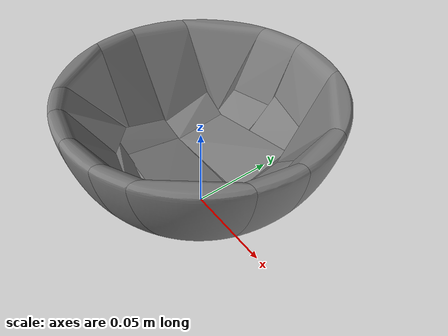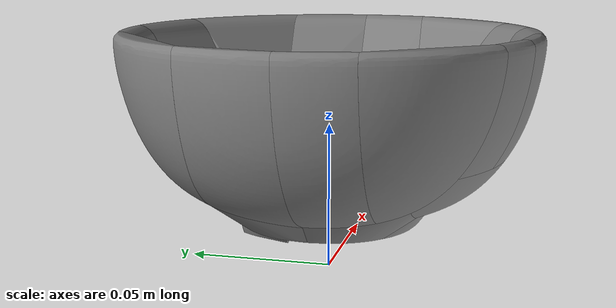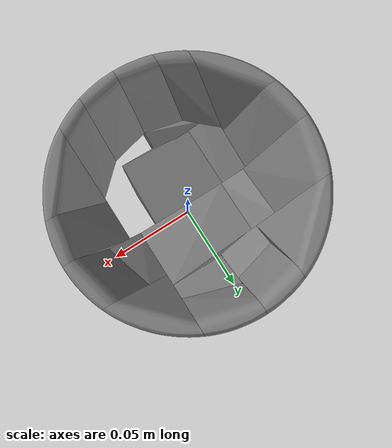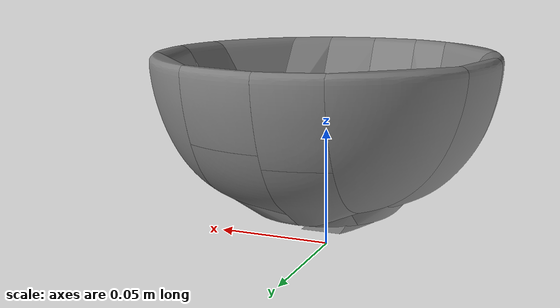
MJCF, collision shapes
<mujoco model="bowl_00">
  <asset>
    <mesh name="bowl00_visual_mesh" file="textured.obj" scale="0.07 0.07 0.07"/>
    <mesh name="bowl00_collision_mesh_0" file="collision_0.obj" scale="0.07 0.07 0.07"/>
    <mesh name="bowl00_collision_mesh_1" file="collision_1.obj" scale="0.07 0.07 0.07"/>
    <mesh name="bowl00_collision_mesh_2" file="collision_2.obj" scale="0.07 0.07 0.07"/>
    <mesh name="bowl00_collision_mesh_3" file="collision_3.obj" scale="0.07 0.07 0.07"/>
    <mesh name="bowl00_collision_mesh_4" file="collision_4.obj" scale="0.07 0.07 0.07"/>
    <mesh name="bowl00_collision_mesh_5" file="collision_5.obj" scale="0.07 0.07 0.07"/>
    <mesh name="bowl00_collision_mesh_6" file="collision_6.obj" scale="0.07 0.07 0.07"/>
    <mesh name="bowl00_collision_mesh_7" file="collision_7.obj" scale="0.07 0.07 0.07"/>
    <mesh name="bowl00_collision_mesh_8" file="collision_8.obj" scale="0.07 0.07 0.07"/>
    <mesh name="bowl00_collision_mesh_9" file="collision_9.obj" scale="0.07 0.07 0.07"/>
    <mesh name="bowl00_collision_mesh_10" file="collision_10.obj" scale="0.07 0.07 0.07"/>
    <mesh name="bowl00_collision_mesh_11" file="collision_11.obj" scale="0.07 0.07 0.07"/>
    <mesh name="bowl00_collision_mesh_12" file="collision_12.obj" scale="0.07 0.07 0.07"/>
    <mesh name="bowl00_collision_mesh_13" file="collision_13.obj" scale="0.07 0.07 0.07"/>
    <mesh name="bowl00_collision_mesh_14" file="collision_14.obj" scale="0.07 0.07 0.07"/>
    <mesh name="bowl00_collision_mesh_15" file="collision_15.obj" scale="0.07 0.07 0.07"/>
    <mesh name="bowl00_collision_mesh_16" file="collision_16.obj" scale="0.07 0.07 0.07"/>
    <mesh name="bowl00_collision_mesh_17" file="collision_17.obj" scale="0.07 0.07 0.07"/>
    <mesh name="bowl00_collision_mesh_18" file="collision_18.obj" scale="0.07 0.07 0.07"/>
    <mesh name="bowl00_collision_mesh_19" file="collision_19.obj" scale="0.07 0.07 0.07"/>
    <mesh name="bowl00_collision_mesh_20" file="collision_20.obj" scale="0.07 0.07 0.07"/>
    <mesh name="bowl00_collision_mesh_21" file="collision_21.obj" scale="0.07 0.07 0.07"/>
    <mesh name="bowl00_collision_mesh_22" file="collision_22.obj" scale="0.07 0.07 0.07"/>
    <mesh name="bowl00_collision_mesh_23" file="collision_23.obj" scale="0.07 0.07 0.07"/>
    <texture name="tex-bowl00" type="2d" file="texture_map.png"/>
    <material name="bowl00_material"
              texture="tex-bowl00"
              rgba="1 1 1 1"
              texrepeat="1 1"
              texuniform="false"
              reflectance="0.5"/>
  </asset>

  <worldbody>
    <body>
      <body name="object">
        <geom name="g0"
              type="mesh"
              pos="0 0 0.05"
              quat="0.707107 0.707107 0 0"
              mesh="bowl00_collision_mesh_0"
              density="300"
              friction="1 0.3 0.1"
              solimp="0.998 0.998 0.001"
              solref="0.001 1"
              contype="1"
              conaffinity="1"
              group="0"
              condim="4"/>
        <geom name="g1"
              type="mesh"
              pos="0 0 0.05"
              quat="0.707107 0.707107 0 0"
              mesh="bowl00_collision_mesh_1"
              density="300"
              friction="1 0.3 0.1"
              solimp="0.998 0.998 0.001"
              solref="0.001 1"
              contype="1"
              conaffinity="1"
              group="0"
              condim="4"/>
        <geom name="g2"
              type="mesh"
              pos="0 0 0.05"
              quat="0.707107 0.707107 0 0"
              mesh="bowl00_collision_mesh_2"
              density="300"
              friction="1 0.3 0.1"
              solimp="0.998 0.998 0.001"
              solref="0.001 1"
              contype="1"
              conaffinity="1"
              group="0"
              condim="4"/>
        <geom name="g3"
              type="mesh"
              pos="0 0 0.05"
              quat="0.707107 0.707107 0 0"
              mesh="bowl00_collision_mesh_3"
              density="300"
              friction="1 0.3 0.1"
              solimp="0.998 0.998 0.001"
              solref="0.001 1"
              contype="1"
              conaffinity="1"
              group="0"
              condim="4"/>
        <geom name="g4"
              type="mesh"
              pos="0 0 0.05"
              quat="0.707107 0.707107 0 0"
              mesh="bowl00_collision_mesh_4"
              density="300"
              friction="1 0.3 0.1"
              solimp="0.998 0.998 0.001"
              solref="0.001 1"
              contype="1"
              conaffinity="1"
              group="0"
              condim="4"/>
        <geom name="g5"
              type="mesh"
              pos="0 0 0.05"
              quat="0.707107 0.707107 0 0"
              mesh="bowl00_collision_mesh_5"
              density="300"
              friction="1 0.3 0.1"
              solimp="0.998 0.998 0.001"
              solref="0.001 1"
              contype="1"
              conaffinity="1"
              group="0"
              condim="4"/>
        <geom name="g6"
              type="mesh"
              pos="0 0 0.05"
              quat="0.707107 0.707107 0 0"
              mesh="bowl00_collision_mesh_6"
              density="300"
              friction="1 0.3 0.1"
              solimp="0.998 0.998 0.001"
              solref="0.001 1"
              contype="1"
              conaffinity="1"
              group="0"
              condim="4"/>
        <geom name="g7"
              type="mesh"
              pos="0 0 0.05"
              quat="0.707107 0.707107 0 0"
              mesh="bowl00_collision_mesh_7"
              density="300"
              friction="1 0.3 0.1"
              solimp="0.998 0.998 0.001"
              solref="0.001 1"
              contype="1"
              conaffinity="1"
              group="0"
              condim="4"/>
        <geom name="g8"
              type="mesh"
              pos="0 0 0.05"
              quat="0.707107 0.707107 0 0"
              mesh="bowl00_collision_mesh_8"
              density="300"
              friction="1 0.3 0.1"
              solimp="0.998 0.998 0.001"
              solref="0.001 1"
              contype="1"
              conaffinity="1"
              group="0"
              condim="4"/>
        <geom name="g9"
              type="mesh"
              pos="0 0 0.05"
              quat="0.707107 0.707107 0 0"
              mesh="bowl00_collision_mesh_9"
              density="300"
              friction="1 0.3 0.1"
              solimp="0.998 0.998 0.001"
              solref="0.001 1"
              contype="1"
              conaffinity="1"
              group="0"
              condim="4"/>
        <geom name="g10"
              type="mesh"
              pos="0 0 0.05"
              quat="0.707107 0.707107 0 0"
              mesh="bowl00_collision_mesh_10"
              density="300"
              friction="1 0.3 0.1"
              solimp="0.998 0.998 0.001"
              solref="0.001 1"
              contype="1"
              conaffinity="1"
              group="0"
              condim="4"/>
        <geom name="g11"
              type="mesh"
              pos="0 0 0.05"
              quat="0.707107 0.707107 0 0"
              mesh="bowl00_collision_mesh_11"
              density="300"
              friction="1 0.3 0.1"
              solimp="0.998 0.998 0.001"
              solref="0.001 1"
              contype="1"
              conaffinity="1"
              group="0"
              condim="4"/>
        <geom name="g12"
              type="mesh"
              pos="0 0 0.05"
              quat="0.707107 0.707107 0 0"
              mesh="bowl00_collision_mesh_12"
              density="300"
              friction="1 0.3 0.1"
              solimp="0.998 0.998 0.001"
              solref="0.001 1"
              contype="1"
              conaffinity="1"
              group="0"
              condim="4"/>
        <geom name="g13"
              type="mesh"
              pos="0 0 0.05"
              quat="0.707107 0.707107 0 0"
              mesh="bowl00_collision_mesh_13"
              density="300"
              friction="1 0.3 0.1"
              solimp="0.998 0.998 0.001"
              solref="0.001 1"
              contype="1"
              conaffinity="1"
              group="0"
              condim="4"/>
        <geom name="g14"
              type="mesh"
              pos="0 0 0.05"
              quat="0.707107 0.707107 0 0"
              mesh="bowl00_collision_mesh_14"
              density="300"
              friction="1 0.3 0.1"
              solimp="0.998 0.998 0.001"
              solref="0.001 1"
              contype="1"
              conaffinity="1"
              group="0"
              condim="4"/>
        <geom name="g15"
              type="mesh"
              pos="0 0 0.05"
              quat="0.707107 0.707107 0 0"
              mesh="bowl00_collision_mesh_15"
              density="300"
              friction="1 0.3 0.1"
              solimp="0.998 0.998 0.001"
              solref="0.001 1"
              contype="1"
              conaffinity="1"
              group="0"
              condim="4"/>
        <geom name="g16"
              type="mesh"
              pos="0 0 0.05"
              quat="0.707107 0.707107 0 0"
              mesh="bowl00_collision_mesh_16"
              density="300"
              friction="1 0.3 0.1"
              solimp="0.998 0.998 0.001"
              solref="0.001 1"
              contype="1"
              conaffinity="1"
              group="0"
              condim="4"/>
        <geom name="g17"
              type="mesh"
              pos="0 0 0.05"
              quat="0.707107 0.707107 0 0"
              mesh="bowl00_collision_mesh_17"
              density="300"
              friction="1 0.3 0.1"
              solimp="0.998 0.998 0.001"
              solref="0.001 1"
              contype="1"
              conaffinity="1"
              group="0"
              condim="4"/>
        <geom name="g18"
              type="mesh"
              pos="0 0 0.05"
              quat="0.707107 0.707107 0 0"
              mesh="bowl00_collision_mesh_18"
              density="300"
              friction="1 0.3 0.1"
              solimp="0.998 0.998 0.001"
              solref="0.001 1"
              contype="1"
              conaffinity="1"
              group="0"
              condim="4"/>
        <geom name="g19"
              type="mesh"
              pos="0 0 0.05"
              quat="0.707107 0.707107 0 0"
              mesh="bowl00_collision_mesh_19"
              density="300"
              friction="1 0.3 0.1"
              solimp="0.998 0.998 0.001"
              solref="0.001 1"
              contype="1"
              conaffinity="1"
              group="0"
              condim="4"/>
        <geom name="g20"
              type="mesh"
              pos="0 0 0.05"
              quat="0.707107 0.707107 0 0"
              mesh="bowl00_collision_mesh_20"
              density="300"
              friction="1 0.3 0.1"
              solimp="0.998 0.998 0.001"
              solref="0.001 1"
              contype="1"
              conaffinity="1"
              group="0"
              condim="4"/>
        <geom name="g21"
              type="mesh"
              pos="0 0 0.05"
              quat="0.707107 0.707107 0 0"
              mesh="bowl00_collision_mesh_21"
              density="300"
              friction="1 0.3 0.1"
              solimp="0.998 0.998 0.001"
              solref="0.001 1"
              contype="1"
              conaffinity="1"
              group="0"
              condim="4"/>
        <geom name="g22"
              type="mesh"
              pos="0 0 0.05"
              quat="0.707107 0.707107 0 0"
              mesh="bowl00_collision_mesh_22"
              density="300"
              friction="1 0.3 0.1"
              solimp="0.998 0.998 0.001"
              solref="0.001 1"
              contype="1"
              conaffinity="1"
              group="0"
              condim="4"/>
        <geom name="g23"
              type="mesh"
              pos="0 0 0.05"
              quat="0.707107 0.707107 0 0"
              mesh="bowl00_collision_mesh_23"
              density="300"
              friction="1 0.3 0.1"
              solimp="0.998 0.998 0.001"
              solref="0.001 1"
              contype="1"
              conaffinity="1"
              group="0"
              condim="4"/>

        <geom name="g_visual"
              type="mesh"
              pos="0 0 0.05"
              quat="0.707107 0.707107 0 0"
              mesh="bowl00_visual_mesh"
              material="bowl00_material"
              contype="0"
              conaffinity="0"
              group="1"/>
      </body>

      <site name="bottom_site" rgba="0 0 0 0" size="0.005" pos="0 0 -0.03"/>
      <site name="top_site" rgba="0 0 0 0" size="0.005" pos="0 0 0.03"/>
      <site name="horizontal_radius_site" rgba="0 0 0 0" size="0.005" pos="0.06 0 0"/>
    </body>
  </worldbody>
</mujoco>
